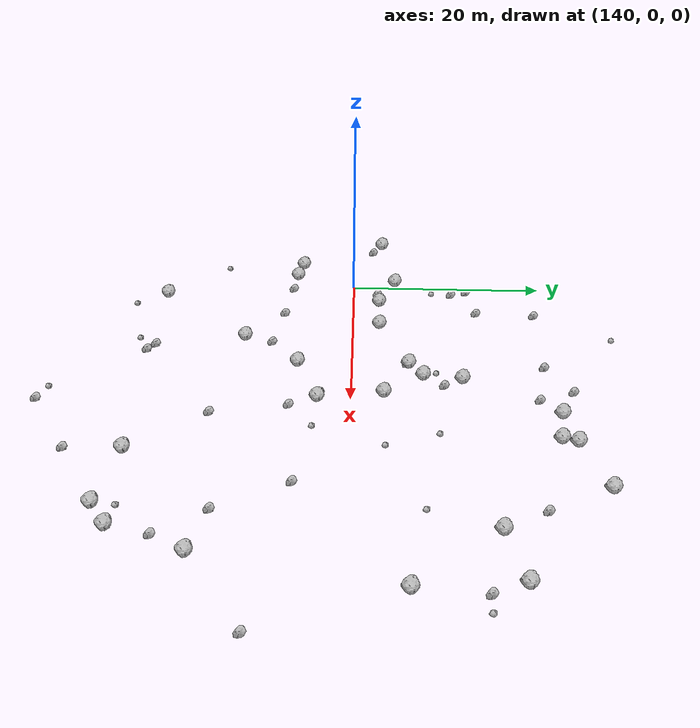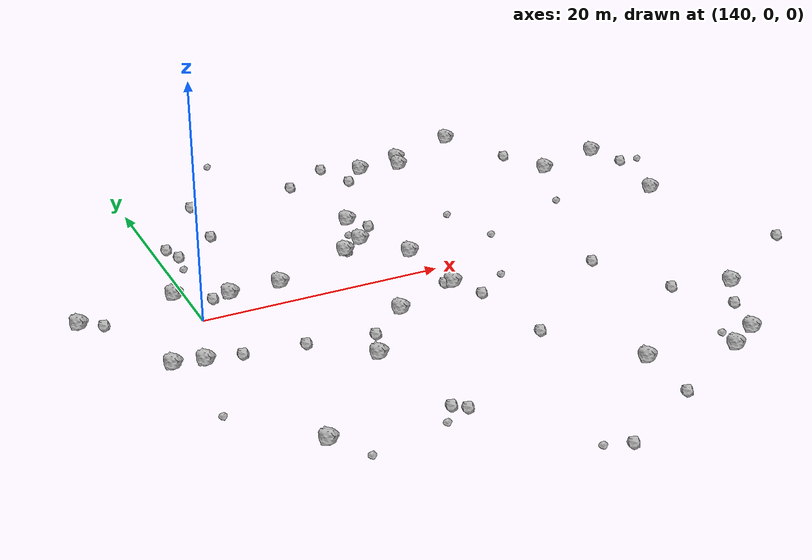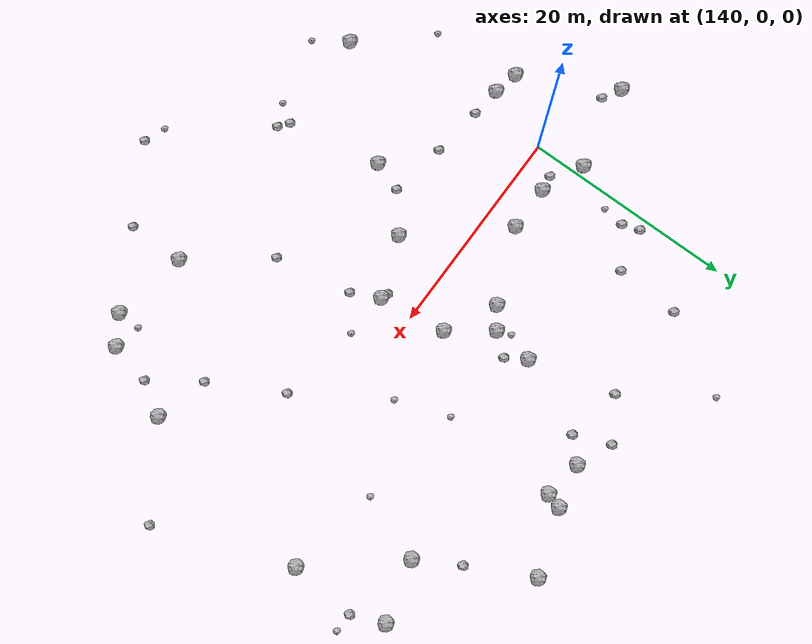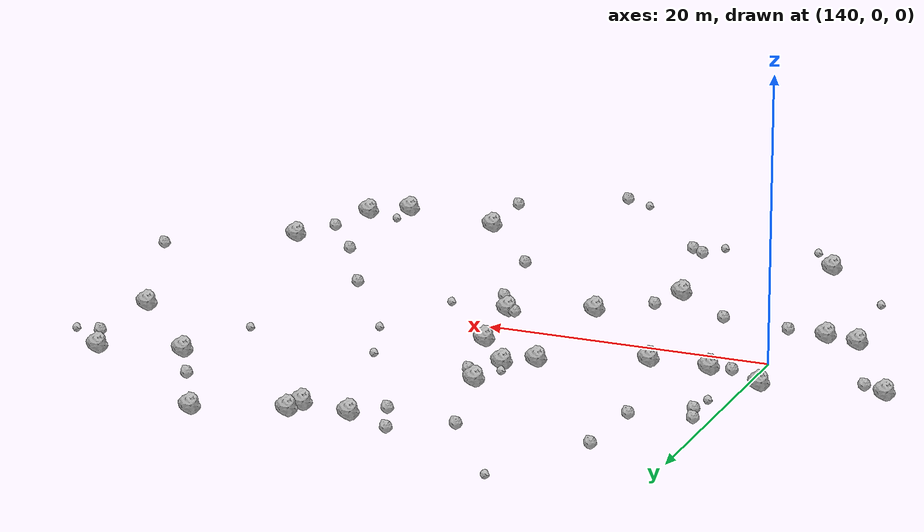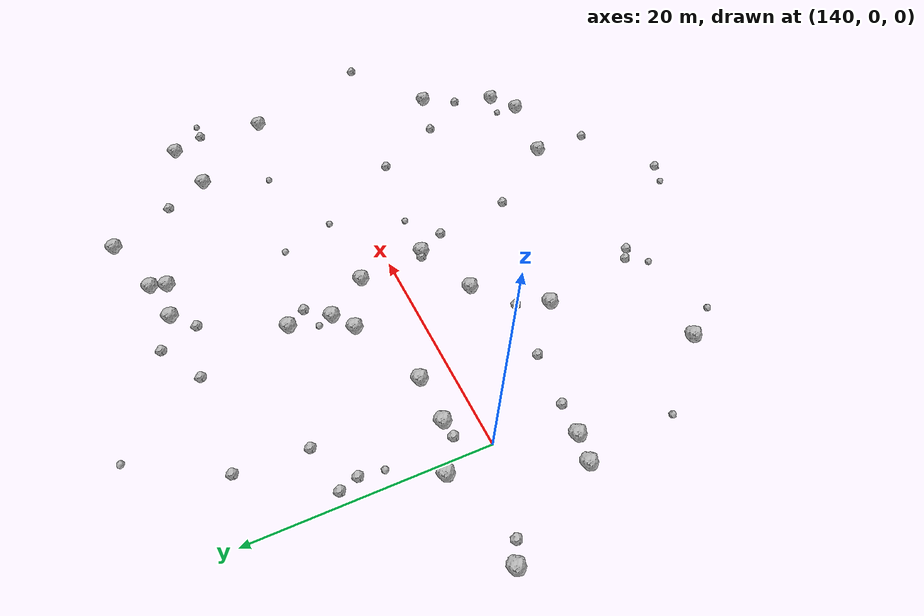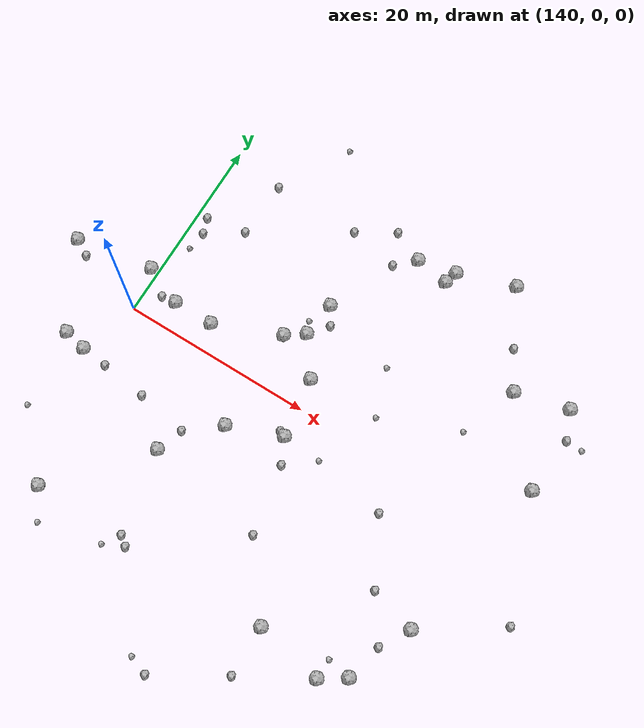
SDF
<sdf version="1.6">
 <world name="default">
  <include><uri>model://sun</uri></include>
  <model name="rock1_4_2">
   <include><uri>model://rock1</uri><pose>142.2009408418793 -20.0896061972202 0.5 0 0 0</pose></include>
  </model>
  <model name="rock1_4_3">
   <include><uri>model://rock1</uri><pose>161.90586902539462 19.627072039982984 0.5 0 0 0</pose></include>
  </model>
  <model name="rock1_4_4">
   <include><uri>model://rock1</uri><pose>139.20883974602475 4.463605249282558 0.5 0 0 0</pose></include>
  </model>
  <model name="rock1_4_5">
   <include><uri>model://rock1</uri><pose>143.29579028448967 2.7332157982834744 0.5 0 0 0</pose></include>
  </model>
  <model name="rock1_4_6">
   <include><uri>model://rock1</uri><pose>168.03644222082596 -20.09594616774553 0.5 0 0 0</pose></include>
  </model>
  <model name="rock1_4_7">
   <include><uri>model://rock1</uri><pose>135.71355167497592 -5.696955602717349 0.5 0 0 0</pose></include>
  </model>
  <model name="rock1_4_8">
   <include><uri>model://rock1</uri><pose>131.05047257619876 3.095943028082324 0.5 0 0 0</pose></include>
  </model>
  <model name="rock1_4_9">
   <include><uri>model://rock1</uri><pose>175.06620555437323 -21.371259148114504 0.5 0 0 0</pose></include>
  </model>
  <model name="rock1_4_10">
   <include><uri>model://rock1</uri><pose>165.47027464452617 19.05713303173649 0.5 0 0 0</pose></include>
  </model>
  <model name="rock1_4_11">
   <include><uri>model://rock1</uri><pose>159.1893542637972 3.1151720997658217 0.5 0 0 0</pose></include>
  </model>
  <model name="rock1_4_12">
   <include><uri>model://rock1</uri><pose>165.8850205585983 20.461977545656865 0.5 0 0 0</pose></include>
  </model>
  <model name="rock1_4_13">
   <include><uri>model://rock1</uri><pose>177.6148774173914 -19.70255676864816 0.5 0 0 0</pose></include>
  </model>
  <model name="rock1_4_14">
   <include><uri>model://rock1</uri><pose>154.45235401536843 5.5991955090206815 0.5 0 0 0</pose></include>
  </model>
  <model name="rock1_4_15">
   <include><uri>model://rock1</uri><pose>160.07149024175146 -3.1993166043717274 0.5 0 0 0</pose></include>
  </model>
  <model name="rock1_4_16">
   <include><uri>model://rock1</uri><pose>154.47941021782603 -5.357843905049624 0.5 0 0 0</pose></include>
  </model>
  <model name="rock1_4_17">
   <include><uri>model://rock1</uri><pose>171.85757679852236 22.45931314261786 0.5 0 0 0</pose></include>
  </model>
  <model name="rock1_4_18">
   <include><uri>model://rock1</uri><pose>147.55011090842527 2.7402251107334905 0.5 0 0 0</pose></include>
  </model>
  <model name="rock1_4_19">
   <include><uri>model://rock1</uri><pose>156.3666276496745 6.9559597337469015 0.5 0 0 0</pose></include>
  </model>
  <model name="rock1_4_20">
   <include><uri>model://rock1</uri><pose>156.81682289425038 10.72569720409004 0.5 0 0 0</pose></include>
  </model>
  <model name="rock1_4_21">
   <include><uri>model://rock1</uri><pose>150.14015804882152 -10.92912523976824 0.5 0 0 0</pose></include>
  </model>
  <model name="rock1_4_22">
   <include><uri>model://rock1</uri><pose>177.07345021669246 12.699470056710972 0.5 0 0 0</pose></include>
  </model>
  <model name="rock1_4_23">
   <include><uri>model://rock1</uri><pose>182.7245175980825 14.113330901996044 0.5 0 0 0</pose></include>
  </model>
  <model name="rock1_4_24">
   <include><uri>model://rock1</uri><pose>183.5105410109624 4.993755128923851 0.5 0 0 0</pose></include>
  </model>
  <model name="rock1_4_25">
   <include><uri>model://rock1</uri><pose>180.30302463222483 -12.766587427651249 0.5 0 0 0</pose></include>
  </model>
  <model name="rock1_4_26">
   <include><uri>model://rock1</uri><pose>138.0996480753414 -6.207846965834275 0.5 0 0 0</pose></include>
  </model>
  <model name="rock2_4_0">
   <include><uri>model://rock2</uri><pose>171.92643650441408 -4.797006686582954 0.3 0 0 0</pose></include>
  </model>
  <model name="rock2_4_1">
   <include><uri>model://rock2</uri><pose>175.45320818599797 -11.4037113198297 0.3 0 0 0</pose></include>
  </model>
  <model name="rock2_4_2">
   <include><uri>model://rock2</uri><pose>152.73774911269234 -20.58177858961416 0.3 0 0 0</pose></include>
  </model>
  <model name="rock2_4_3">
   <include><uri>model://rock2</uri><pose>141.58074168407333 10.471035915494355 0.3 0 0 0</pose></include>
  </model>
  <model name="rock2_4_4">
   <include><uri>model://rock2</uri><pose>145.19854397462518 12.882687590790212 0.3 0 0 0</pose></include>
  </model>
  <model name="rock2_4_5">
   <include><uri>model://rock2</uri><pose>188.21639480724798 -7.500154666902677 0.3 0 0 0</pose></include>
  </model>
  <model name="rock2_4_6">
   <include><uri>model://rock2</uri><pose>145.73601084895927 -7.158163822737727 0.3 0 0 0</pose></include>
  </model>
  <model name="rock2_4_7">
   <include><uri>model://rock2</uri><pose>174.84380399914969 16.649435643938098 0.3 0 0 0</pose></include>
  </model>
  <model name="rock2_4_8">
   <include><uri>model://rock2</uri><pose>151.07468992463288 -8.090022426839965 0.3 0 0 0</pose></include>
  </model>
  <model name="rock2_4_9">
   <include><uri>model://rock2</uri><pose>141.0479978640527 12.111298275049727 0.3 0 0 0</pose></include>
  </model>
  <model name="rock2_4_10">
   <include><uri>model://rock2</uri><pose>145.50482976352504 18.885746342386753 0.3 0 0 0</pose></include>
  </model>
  <model name="rock2_4_11">
   <include><uri>model://rock2</uri><pose>159.40468046136542 -2.947524613077647 0.3 0 0 0</pose></include>
  </model>
  <model name="rock2_4_12">
   <include><uri>model://rock2</uri><pose>140.87257757456098 -6.520406852373206 0.3 0 0 0</pose></include>
  </model>
  <model name="rock2_4_13">
   <include><uri>model://rock2</uri><pose>157.92637209715463 8.927610274819209 0.3 0 0 0</pose></include>
  </model>
  <model name="rock2_4_14">
   <include><uri>model://rock2</uri><pose>178.52234205233006 -15.79711234581978 0.3 0 0 0</pose></include>
  </model>
  <model name="rock2_4_15">
   <include><uri>model://rock2</uri><pose>158.60783663492822 21.144390089247523 0.3 0 0 0</pose></include>
  </model>
  <model name="rock2_4_16">
   <include><uri>model://rock2</uri><pose>168.08629987745354 -25.434084548258063 0.3 0 0 0</pose></include>
  </model>
  <model name="rock2_4_17">
   <include><uri>model://rock2</uri><pose>161.0640212552056 -29.656721916331872 0.3 0 0 0</pose></include>
  </model>
  <model name="rock2_4_18">
   <include><uri>model://rock2</uri><pose>141.73177398213676 2.5578689585875054 0.3 0 0 0</pose></include>
  </model>
  <model name="rock2_4_19">
   <include><uri>model://rock2</uri><pose>151.78233658887433 -19.828839980804734 0.3 0 0 0</pose></include>
  </model>
  <model name="rock2_4_20">
   <include><uri>model://rock2</uri><pose>132.7213600364543 2.1158925744575185 0.3 0 0 0</pose></include>
  </model>
  <model name="rock2_4_21">
   <include><uri>model://rock2</uri><pose>159.94207065241437 17.805294558381846 0.3 0 0 0</pose></include>
  </model>
  <model name="rock2_4_22">
   <include><uri>model://rock2</uri><pose>162.64869653777674 -13.079541210536618 0.3 0 0 0</pose></include>
  </model>
  <model name="rock2_4_23">
   <include><uri>model://rock2</uri><pose>154.74034378595093 18.821020495379692 0.3 0 0 0</pose></include>
  </model>
  <model name="rock2_4_24">
   <include><uri>model://rock2</uri><pose>154.49167154274744 5.45992045487975 0.3 0 0 0</pose></include>
  </model>
  <model name="rock2_4_25">
   <include><uri>model://rock2</uri><pose>161.3112561663825 -5.786718334451951 0.3 0 0 0</pose></include>
  </model>
  <model name="rock2_4_26">
   <include><uri>model://rock2</uri><pose>183.9622088148728 11.163883247463986 0.3 0 0 0</pose></include>
  </model>
  <model name="rock3_4_0">
   <include><uri>model://rock3</uri><pose>141.2867394930541 8.376616422887068 0.2 0 0 0</pose></include>
  </model>
  <model name="rock3_4_1">
   <include><uri>model://rock3</uri><pose>136.58366530106838 -14.004754633793464 0.2 0 0 0</pose></include>
  </model>
  <model name="rock3_4_2">
   <include><uri>model://rock3</uri><pose>159.05271351058883 -28.95157432596938 0.2 0 0 0</pose></include>
  </model>
  <model name="rock3_4_3">
   <include><uri>model://rock3</uri><pose>165.0078312900954 8.167373765979463 0.2 0 0 0</pose></include>
  </model>
  <model name="rock3_4_4">
   <include><uri>model://rock3</uri><pose>149.6374087161551 26.26050291693653 0.2 0 0 0</pose></include>
  </model>
  <model name="rock3_4_5">
   <include><uri>model://rock3</uri><pose>174.83520381753533 6.561637609955625 0.2 0 0 0</pose></include>
  </model>
  <model name="rock3_4_6">
   <include><uri>model://rock3</uri><pose>144.1271225524854 -23.150212024582707 0.2 0 0 0</pose></include>
  </model>
  <model name="rock3_4_7">
   <include><uri>model://rock3</uri><pose>164.22141649851022 -3.4950624372343526 0.2 0 0 0</pose></include>
  </model>
  <model name="rock3_4_8">
   <include><uri>model://rock3</uri><pose>175.12364449266113 -19.29106892464358 0.2 0 0 0</pose></include>
  </model>
  <model name="rock3_4_9">
   <include><uri>model://rock3</uri><pose>155.8188771602592 8.23268688309902 0.2 0 0 0</pose></include>
  </model>
  <model name="rock3_4_10">
   <include><uri>model://rock3</uri><pose>150.61039834087 -21.623383073852374 0.2 0 0 0</pose></include>
  </model>
  <model name="rock3_4_11">
   <include><uri>model://rock3</uri><pose>185.72234538159753 11.069535167503588 0.2 0 0 0</pose></include>
  </model>
  <model name="rock3_4_12">
   <include><uri>model://rock3</uri><pose>166.7366815169916 3.2028805791528825 0.2 0 0 0</pose></include>
  </model>
 </world>
</sdf>
